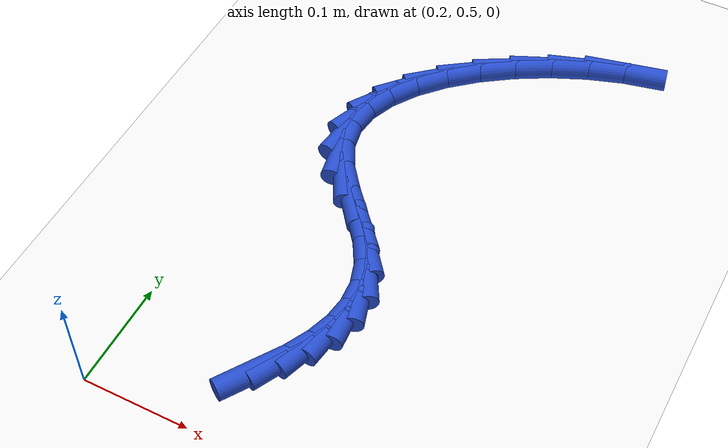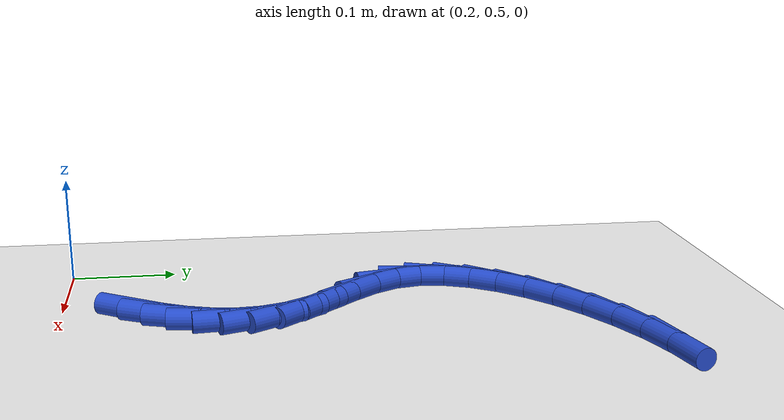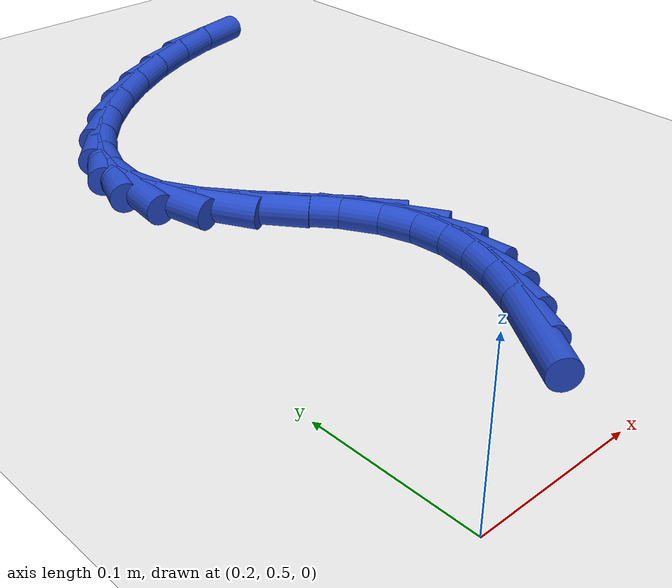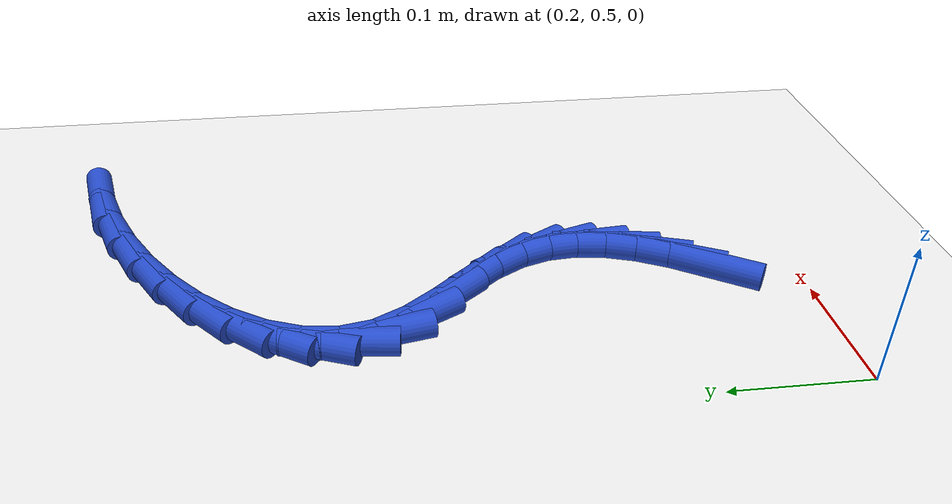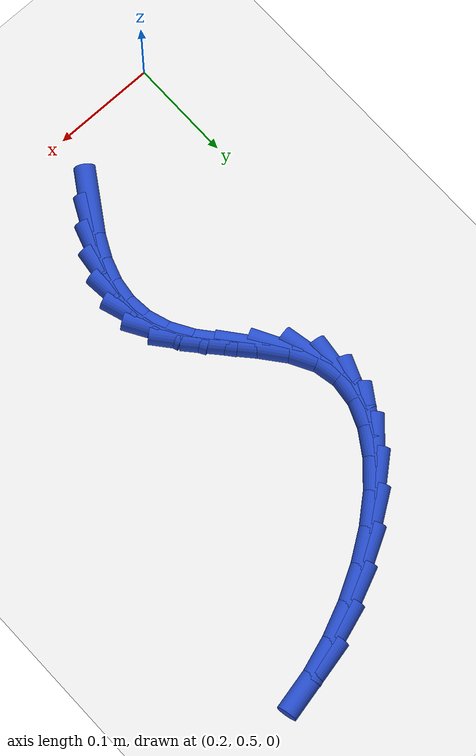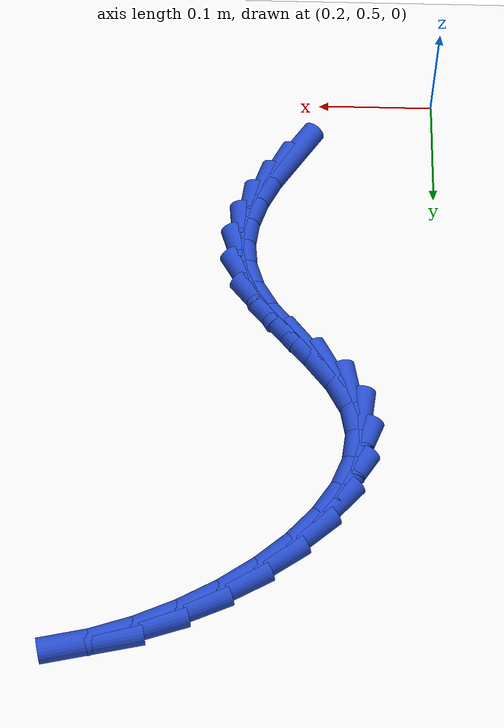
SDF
<sdf version="1.6">
 <world name="default">
  <model name="ground_plane">
   <static>1</static>
   <link name="link">
    <collision name="collision">
     <geometry><plane><normal>0 0 1</normal><size>100 100</size></plane></geometry>
     <surface><friction><ode><mu>100</mu><mu2>50</mu2></ode></friction></surface>
    </collision>
    <visual name="visual">
     <cast_shadows>0</cast_shadows>
     <geometry><plane><normal>0 0 1</normal><size>100 100</size></plane></geometry>
     <material>
      <script><uri>file://media/materials/scripts/gazebo.material</uri><name>Gazebo/WhiteGlow</name></script>
     </material>
    </visual>
   </link>
  </model>
  <model name="line">
   <link name="link_22">
    <pose>0.32644418172308853 0.569038434511848 0.01 0 1.57 0.9898998767751676</pose>
    <collision name="collision">
     <geometry><cylinder><radius>0.01</radius><length>0.08</length></cylinder></geometry>
    </collision>
    <visual name="visual">
     <material>
      <script><name>Gazebo/Blue</name><uri>file://media/materials/scripts/gazebo.material</uri></script>
     </material>
     <geometry><cylinder><radius>0.01</radius><length>0.08</length></cylinder></geometry>
    </visual>
   </link>
   <link name="link_23">
    <pose>0.34120791572704295 0.5915286834220042 0.01 0 1.57 1.102024214414436</pose>
    <collision name="collision">
     <geometry><cylinder><radius>0.01</radius><length>0.08</length></cylinder></geometry>
    </collision>
    <visual name="visual">
     <material>
      <script><name>Gazebo/Blue</name><uri>file://media/materials/scripts/gazebo.material</uri></script>
     </material>
     <geometry><cylinder><radius>0.01</radius><length>0.08</length></cylinder></geometry>
    </visual>
   </link>
   <link name="link_24">
    <pose>0.35251891385114587 0.613863801138451 0.01 0 1.57 1.2497152944620502</pose>
    <collision name="collision">
     <geometry><cylinder><radius>0.01</radius><length>0.08</length></cylinder></geometry>
    </collision>
    <visual name="visual">
     <material>
      <script><name>Gazebo/Blue</name><uri>file://media/materials/scripts/gazebo.material</uri></script>
     </material>
     <geometry><cylinder><radius>0.01</radius><length>0.08</length></cylinder></geometry>
    </visual>
   </link>
   <link name="link_25">
    <pose>0.3599030914403919 0.6360658721125474 0.01 0 1.57 1.436564354704918</pose>
    <collision name="collision">
     <geometry><cylinder><radius>0.01</radius><length>0.08</length></cylinder></geometry>
    </collision>
    <visual name="visual">
     <material>
      <script><name>Gazebo/Blue</name><uri>file://media/materials/scripts/gazebo.material</uri></script>
     </material>
     <geometry><cylinder><radius>0.01</radius><length>0.08</length></cylinder></geometry>
    </visual>
   </link>
   <link name="link_26">
    <pose>0.3628863638397749 0.6581569807956513 0.01 0 1.57 -1.4850288130593812</pose>
    <collision name="collision">
     <geometry><cylinder><radius>0.01</radius><length>0.08</length></cylinder></geometry>
    </collision>
    <visual name="visual">
     <material>
      <script><name>Gazebo/Blue</name><uri>file://media/materials/scripts/gazebo.material</uri></script>
     </material>
     <geometry><cylinder><radius>0.01</radius><length>0.08</length></cylinder></geometry>
    </visual>
   </link>
   <link name="link_27">
    <pose>0.36099464639428946 0.6801592116391217 0.01 0 1.57 -1.2519625343550664</pose>
    <collision name="collision">
     <geometry><cylinder><radius>0.01</radius><length>0.08</length></cylinder></geometry>
    </collision>
    <visual name="visual">
     <material>
      <script><name>Gazebo/Blue</name><uri>file://media/materials/scripts/gazebo.material</uri></script>
     </material>
     <geometry><cylinder><radius>0.01</radius><length>0.08</length></cylinder></geometry>
    </visual>
   </link>
   <link name="link_28">
    <pose>0.3537538544489299 0.7020946490943174 0.01 0 1.57 -1.033050222345862</pose>
    <collision name="collision">
     <geometry><cylinder><radius>0.01</radius><length>0.08</length></cylinder></geometry>
    </collision>
    <visual name="visual">
     <material>
      <script><name>Gazebo/Blue</name><uri>file://media/materials/scripts/gazebo.material</uri></script>
     </material>
     <geometry><cylinder><radius>0.01</radius><length>0.08</length></cylinder></geometry>
    </visual>
   </link>
   <link name="link_29">
    <pose>0.34069861504387206 0.7239858231963666 0.01 0 1.57 -0.8807515365317208</pose>
    <collision name="collision">
     <geometry><cylinder><radius>0.01</radius><length>0.08</length></cylinder></geometry>
    </collision>
    <visual name="visual">
     <material>
      <script><name>Gazebo/Blue</name><uri>file://media/materials/scripts/gazebo.material</uri></script>
     </material>
     <geometry><cylinder><radius>0.01</radius><length>0.08</length></cylinder></geometry>
    </visual>
   </link>
   <link name="link_30">
    <pose>0.32259532627155973 0.745918266321278 0.01 0 1.57 -0.8399155517962795</pose>
    <collision name="collision">
     <geometry><cylinder><radius>0.01</radius><length>0.08</length></cylinder></geometry>
    </collision>
    <visual name="visual">
     <material>
      <script><name>Gazebo/Blue</name><uri>file://media/materials/scripts/gazebo.material</uri></script>
     </material>
     <geometry><cylinder><radius>0.01</radius><length>0.08</length></cylinder></geometry>
    </visual>
   </link>
   <link name="link_31">
    <pose>0.3027047282640937 0.7681050908747772 0.01 0 1.57 -0.8965930160381148</pose>
    <collision name="collision">
     <geometry><cylinder><radius>0.01</radius><length>0.08</length></cylinder></geometry>
    </collision>
    <visual name="visual">
     <material>
      <script><name>Gazebo/Blue</name><uri>file://media/materials/scripts/gazebo.material</uri></script>
     </material>
     <geometry><cylinder><radius>0.01</radius><length>0.08</length></cylinder></geometry>
    </visual>
   </link>
   <link name="link_32">
    <pose>0.2845889220684786 0.7907748232009614 0.01 0 1.57 -1.0706021516177606</pose>
    <collision name="collision">
     <geometry><cylinder><radius>0.01</radius><length>0.08</length></cylinder></geometry>
    </collision>
    <visual name="visual">
     <material>
      <script><name>Gazebo/Blue</name><uri>file://media/materials/scripts/gazebo.material</uri></script>
     </material>
     <geometry><cylinder><radius>0.01</radius><length>0.08</length></cylinder></geometry>
    </visual>
   </link>
   <link name="link_33">
    <pose>0.271809850574127 0.814155964805094 0.01 0 1.57 -1.3764358824852463</pose>
    <collision name="collision">
     <geometry><cylinder><radius>0.01</radius><length>0.08</length></cylinder></geometry>
    </collision>
    <visual name="visual">
     <material>
      <script><name>Gazebo/Blue</name><uri>file://media/materials/scripts/gazebo.material</uri></script>
     </material>
     <geometry><cylinder><radius>0.01</radius><length>0.08</length></cylinder></geometry>
    </visual>
   </link>
   <link name="link_34">
    <pose>0.26704956531521407 0.838338829224721 0.01 0 1.57 1.4496252330126995</pose>
    <collision name="collision">
     <geometry><cylinder><radius>0.01</radius><length>0.08</length></cylinder></geometry>
    </collision>
    <visual name="visual">
     <material>
      <script><name>Gazebo/Blue</name><uri>file://media/materials/scripts/gazebo.material</uri></script>
     </material>
     <geometry><cylinder><radius>0.01</radius><length>0.08</length></cylinder></geometry>
    </visual>
   </link>
   <link name="link_35">
    <pose>0.2700465850829104 0.8629514447331414 0.01 0 1.57 1.1885897428334957</pose>
    <collision name="collision">
     <geometry><cylinder><radius>0.01</radius><length>0.08</length></cylinder></geometry>
    </collision>
    <visual name="visual">
     <material>
      <script><name>Gazebo/Blue</name><uri>file://media/materials/scripts/gazebo.material</uri></script>
     </material>
     <geometry><cylinder><radius>0.01</radius><length>0.08</length></cylinder></geometry>
    </visual>
   </link>
   <link name="link_36">
    <pose>0.2799246189306106 0.8875252830143778 0.01 0 1.57 0.9874567396088259</pose>
    <collision name="collision">
     <geometry><cylinder><radius>0.01</radius><length>0.08</length></cylinder></geometry>
    </collision>
    <visual name="visual">
     <material>
      <script><name>Gazebo/Blue</name><uri>file://media/materials/scripts/gazebo.material</uri></script>
     </material>
     <geometry><cylinder><radius>0.01</radius><length>0.08</length></cylinder></geometry>
    </visual>
   </link>
   <link name="link_37">
    <pose>0.2958073759117091 0.9115918157524527 0.01 0 1.57 0.8325156610255934</pose>
    <collision name="collision">
     <geometry><cylinder><radius>0.01</radius><length>0.08</length></cylinder></geometry>
    </collision>
    <visual name="visual">
     <material>
      <script><name>Gazebo/Blue</name><uri>file://media/materials/scripts/gazebo.material</uri></script>
     </material>
     <geometry><cylinder><radius>0.01</radius><length>0.08</length></cylinder></geometry>
    </visual>
   </link>
   <link name="link_38">
    <pose>0.31681856507960054 0.9346825146313894 0.01 0 1.57 0.7084449168871932</pose>
    <collision name="collision">
     <geometry><cylinder><radius>0.01</radius><length>0.08</length></cylinder></geometry>
    </collision>
    <visual name="visual">
     <material>
      <script><name>Gazebo/Blue</name><uri>file://media/materials/scripts/gazebo.material</uri></script>
     </material>
     <geometry><cylinder><radius>0.01</radius><length>0.08</length></cylinder></geometry>
    </visual>
   </link>
   <link name="link_39">
    <pose>0.34208189548767937 0.9563288513352098 0.01 0 1.57 0.6033300780360683</pose>
    <collision name="collision">
     <geometry><cylinder><radius>0.01</radius><length>0.08</length></cylinder></geometry>
    </collision>
    <visual name="visual">
     <material>
      <script><name>Gazebo/Blue</name><uri>file://media/materials/scripts/gazebo.material</uri></script>
     </material>
     <geometry><cylinder><radius>0.01</radius><length>0.08</length></cylinder></geometry>
    </visual>
   </link>
   <link name="link_40">
    <pose>0.3707210761893398 0.9760622975479366 0.01 0 1.57 0.5083915146594752</pose>
    <collision name="collision">
     <geometry><cylinder><radius>0.01</radius><length>0.08</length></cylinder></geometry>
    </collision>
    <visual name="visual">
     <material>
      <script><name>Gazebo/Blue</name><uri>file://media/materials/scripts/gazebo.material</uri></script>
     </material>
     <geometry><cylinder><radius>0.01</radius><length>0.08</length></cylinder></geometry>
    </visual>
   </link>
   <link name="link_41">
    <pose>0.4018598162379765 0.9934143249535919 0.01 0 1.57 0.416724297669691</pose>
    <collision name="collision">
     <geometry><cylinder><radius>0.01</radius><length>0.08</length></cylinder></geometry>
    </collision>
    <visual name="visual">
     <material>
      <script><name>Gazebo/Blue</name><uri>file://media/materials/scripts/gazebo.material</uri></script>
     </material>
     <geometry><cylinder><radius>0.01</radius><length>0.08</length></cylinder></geometry>
    </visual>
   </link>
   <link name="link_42">
    <pose>0.4346218246869844 1.0079164052361997 0.01 0 1.57 0.3221249919168068</pose>
    <collision name="collision">
     <geometry><cylinder><radius>0.01</radius><length>0.08</length></cylinder></geometry>
    </collision>
    <visual name="visual">
     <material>
      <script><name>Gazebo/Blue</name><uri>file://media/materials/scripts/gazebo.material</uri></script>
     </material>
     <geometry><cylinder><radius>0.01</radius><length>0.08</length></cylinder></geometry>
    </visual>
   </link>
   <link name="link_43">
    <pose>0.4681308105897576 1.0191000100797818 0.01 0 1.57 0.21806637981734717</pose>
    <collision name="collision">
     <geometry><cylinder><radius>0.01</radius><length>0.08</length></cylinder></geometry>
    </collision>
    <visual name="visual">
     <material>
      <script><name>Gazebo/Blue</name><uri>file://media/materials/scripts/gazebo.material</uri></script>
     </material>
     <geometry><cylinder><radius>0.01</radius><length>0.08</length></cylinder></geometry>
    </visual>
   </link>
  </model>
 </world>
</sdf>
